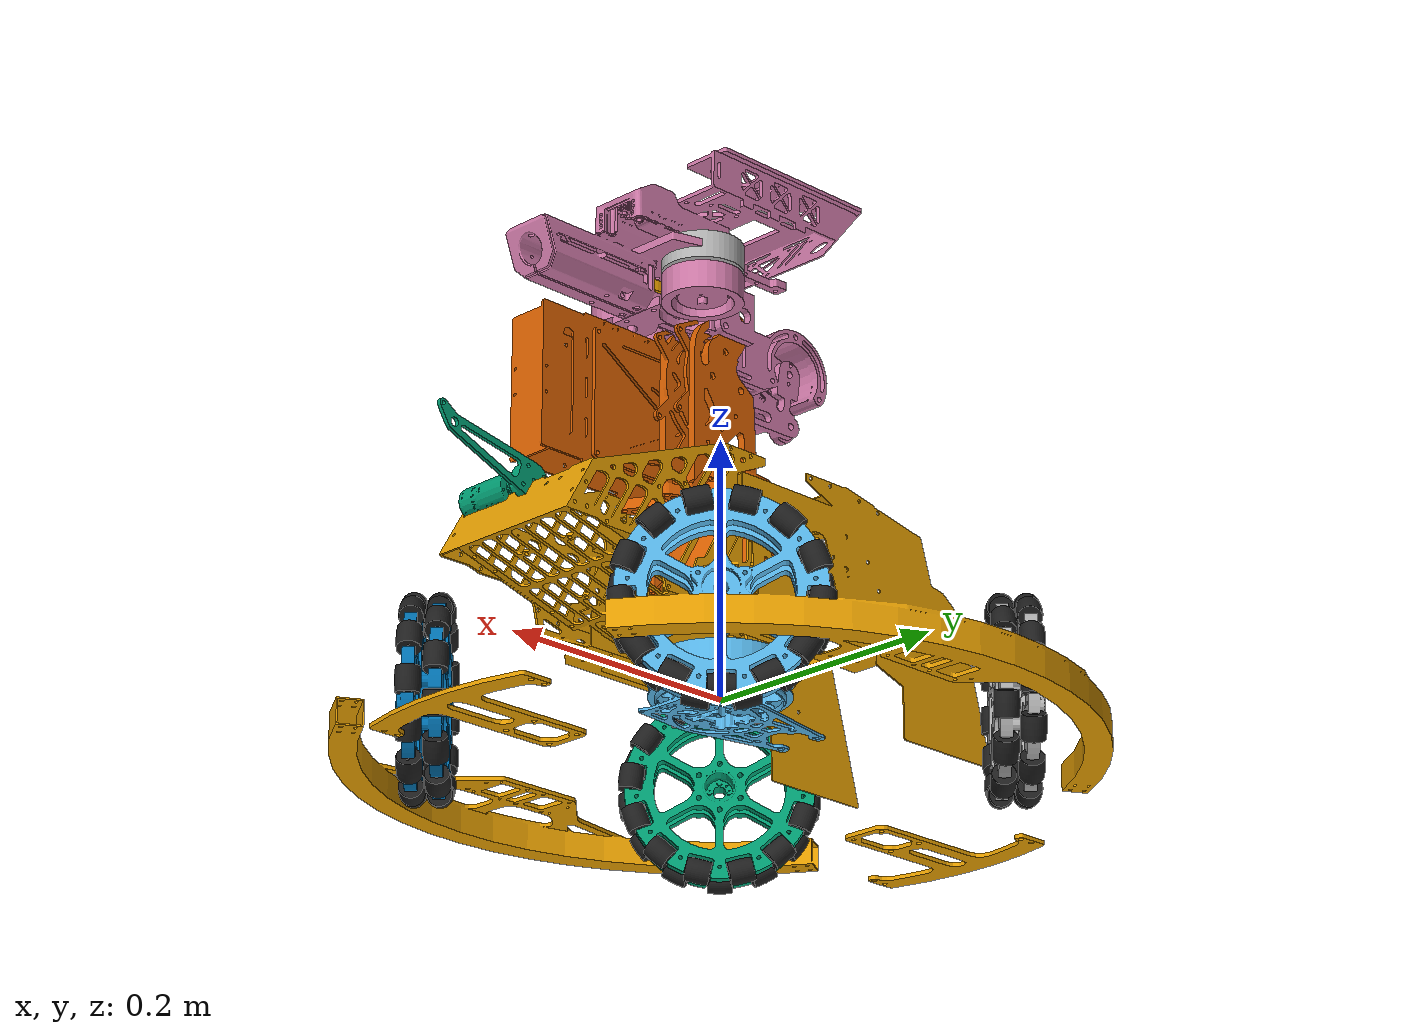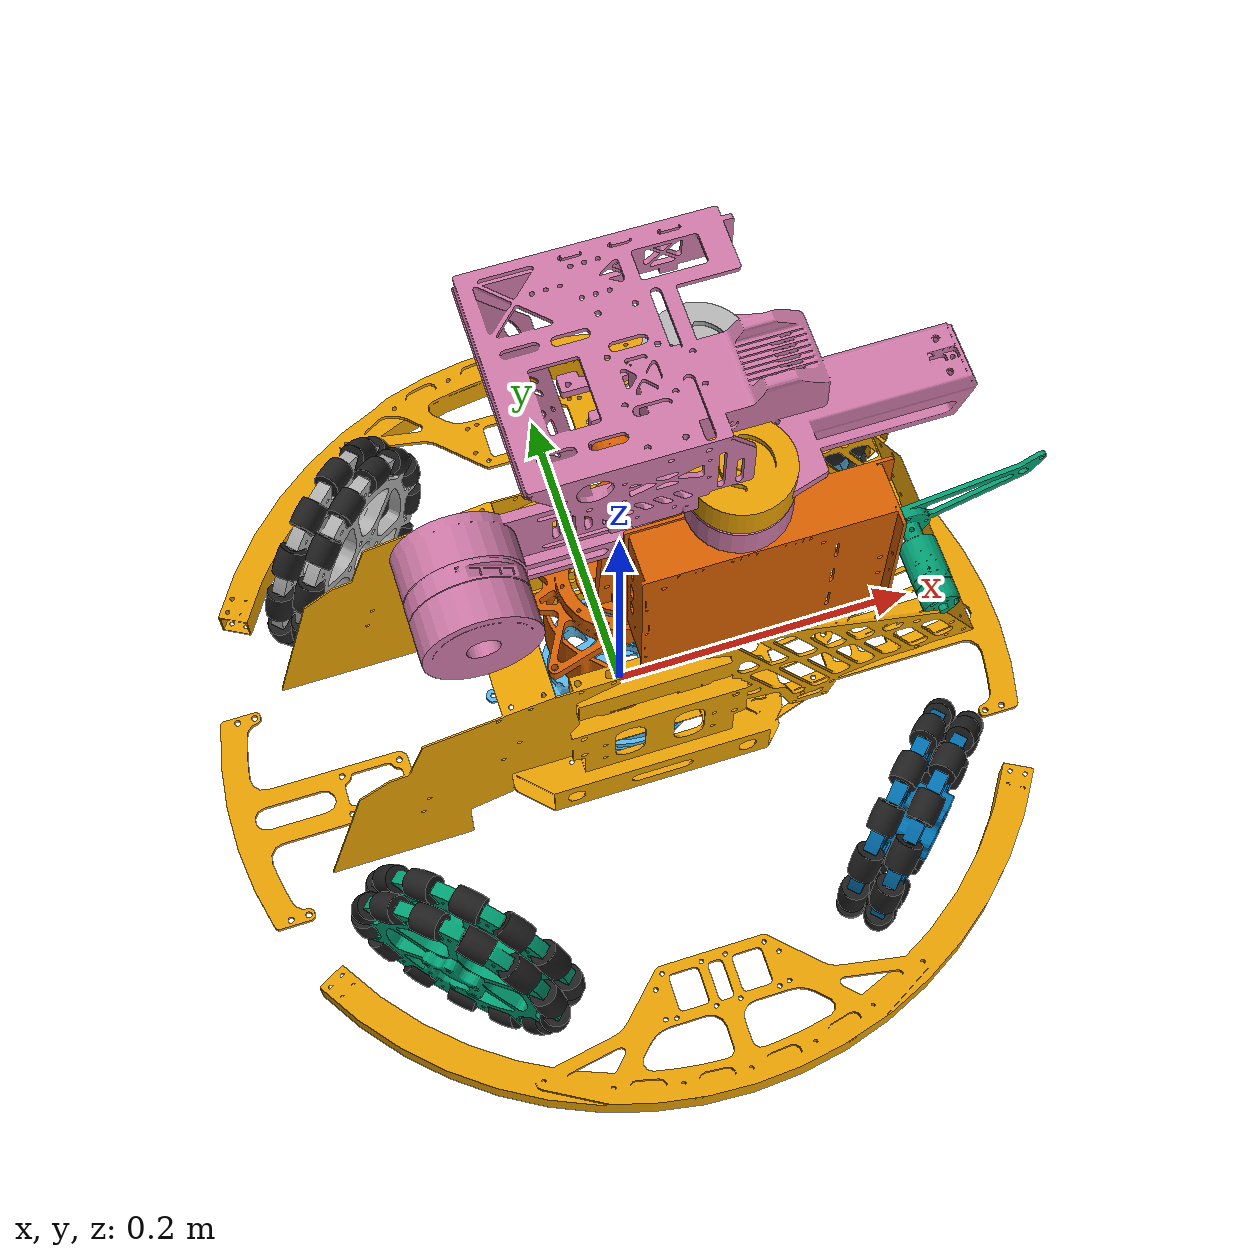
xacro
<?xml version="1.0"?>
<robot xmlns:xacro="http://www.ros.org/wiki/xacro" name="standard3">

    <xacro:arg name="load_chassis" default="true"/>
    <xacro:arg name="load_gimbal" default="true"/>
    <xacro:arg name="load_shooter" default="true"/>
    <xacro:arg name="camera_link" default="camera_link"/>
    <xacro:arg name="camera_optical_frame" default="camera_optical_frame"/>
    <xacro:arg name="use_simulation" default="true"/>

    <xacro:if value="$(arg load_chassis)">
        <xacro:include filename="$(find rm_description)/urdf/standard/chassis.urdf.xacro"/>
        <xacro:chassis/>

        <xacro:if value="$(arg load_gimbal)">
            <xacro:include filename="$(find rm_description)/urdf/standard/gimbal.urdf.xacro"/>
            <xacro:include filename="$(find rm_description)/urdf/standard3/gimbal.transmission.urdf.xacro"/>
            <xacro:include filename="$(find rm_description)/urdf/common/camera.urdf.xacro"/>
            <xacro:include filename="$(find rm_description)/urdf/common/imu.urdf.xacro"/>

            <xacro:if value="$(arg load_shooter)">
                <xacro:include filename="$(find rm_description)/urdf/standard/shooter.urdf.xacro"/>
                <xacro:include filename="$(find rm_description)/urdf/standard3/shooter.transmission.urdf.xacro"/>
            </xacro:if>
        </xacro:if>
    </xacro:if>

    <xacro:if value="$(arg use_simulation)">
        <gazebo>
            <plugin name="rm_ros_control" filename="librm_robot_hw_sim.so">
                <robotNamespace>/</robotNamespace>
                <robotSimType>rm_gazebo/RmRobotHWSim</robotSimType>
            </plugin>
        </gazebo>
    </xacro:if>

</robot>

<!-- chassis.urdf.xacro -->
<robot xmlns:xacro="http://www.ros.org/wiki/xacro">

    <xacro:include filename="$(find rm_description)/urdf/common/omni_wheel.urdf.xacro"/>

    <!-- https://upload.wikimedia.org/wikipedia/commons/5/52/Wheelbase_and_Track.png -->
    <xacro:property name="chassis_radius" value="0.208"/>
    <xacro:property name="wheel_offset_z" value="0.0"/>

    <xacro:macro name="chassis">

        <link name="base_link">
            <inertial>
                <mass value="8.472226"/>
                <origin xyz="0.009872  0.010973  0.001286"/>
                <inertia ixx="1.131e-1" ixy="-4.480e-4" ixz="-9.581e-3" iyy="1.473e-1"
                         iyz="3.352e-3" izz="2.048e-1"/>
            </inertial>
            <visual>
                <origin xyz="0 0 0" rpy="0 0 0"/>
                <geometry>
                    <mesh filename="package://rm_description/meshes/standard/base.stl" scale="0.001 0.001 0.001"/>
                </geometry>
            </visual>
            <collision>
                <origin xyz="0 0 0" rpy="0 0 0"/>
                <geometry>
                    <box size="0.580 0.500 0.050"/>
                </geometry>
            </collision>
        </link>

        <xacro:omni_wheel prefix="left_front" connected_to="base_link"
                          wheel_x_offset="${chassis_radius/sqrt(2)}" wheel_y_offset="${chassis_radius/sqrt(2)}"
                          wheel_z_offset="${wheel_offset_z}" rotation_degree="${3*pi/4}"
        />
        <xacro:omni_wheel prefix="right_front" connected_to="base_link"
                          wheel_x_offset="${chassis_radius/sqrt(2)}" wheel_y_offset="${-chassis_radius/sqrt(2)}"
                          wheel_z_offset="${wheel_offset_z}" rotation_degree="${pi/4}"
        />
        <xacro:omni_wheel prefix="left_back" connected_to="base_link"
                          wheel_x_offset="${-chassis_radius/sqrt(2)}" wheel_y_offset="${chassis_radius/sqrt(2)}"
                          wheel_z_offset="${wheel_offset_z}" rotation_degree="${-3*pi/4}"
        />
        <xacro:omni_wheel prefix="right_back" connected_to="base_link"
                          wheel_x_offset="${-chassis_radius/sqrt(2)}" wheel_y_offset="${-chassis_radius/sqrt(2)}"
                          wheel_z_offset="${wheel_offset_z}" rotation_degree="${-pi/4}"
        />
        <xacro:wheel_transmission prefix="left_front" mechanical_reduction="-19.2032"/>
        <xacro:wheel_transmission prefix="right_front" mechanical_reduction="-19.2032"/>
        <xacro:wheel_transmission prefix="left_back" mechanical_reduction="-19.2032"/>
        <xacro:wheel_transmission prefix="right_back" mechanical_reduction="-19.2032"/>

    </xacro:macro>

</robot>

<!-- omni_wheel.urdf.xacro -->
<robot xmlns:xacro="http://www.ros.org/wiki/xacro" name="omni_wheel">

    <xacro:property name="wheel_radius" value="0.0762"/>
    <xacro:property name="roller_radius" value="0.009"/>
    <xacro:property name="wheel_joint_effort" value="10"/>
    <xacro:property name="wheel_joint_velocity" value="70"/>

    <xacro:macro name="roller" params="prefix suffix theta">
        <xacro:if value="${suffix % 2 == 1}">
            <xacro:property name="joint_y_offset" value="0.009563"/>
        </xacro:if>
        <xacro:if value="${suffix % 2 == 0}">
            <xacro:property name="joint_y_offset" value="-0.009563"/>
        </xacro:if>

        <!--  link  -->
        <link name="${prefix}_roller_${suffix}">
            <visual>
                <origin xyz="0 0 0" rpy="0 0 0"/>
                <geometry>
                    <mesh filename="package://rm_description/meshes/common/omni_roller.stl" scale="0.001 0.001 0.001"/>
                </geometry>
            </visual>
            <collision>
                <geometry>
                    <sphere radius="${roller_radius}"/>
                </geometry>
            </collision>
            <collision>
                    <origin rpy="0 1.57 0" xyz="0 0 0"/>
                    <geometry>
                        <cylinder length="19e-3" radius="8.6e-3"/>
                    </geometry>
            </collision>
            <inertial>
                <mass value="0.0058"/>
                <inertia ixx="270.867e-9" ixy="1.547e-19" ixz="2.133e-19" iyy="291.412e-9" iyz="0.0" izz="291.412e-9"/>
            </inertial>
        </link>

        <joint name="${prefix}_roller_${suffix}_joint" type="continuous">
            <origin
                    xyz="${(wheel_radius-roller_radius)*cos(theta-pi/2)} ${joint_y_offset} ${(wheel_radius-roller_radius)*sin(theta-pi/2)}"
                    rpy="0 ${-theta} 0"/>
            <axis xyz="1 0 0"/>
            <dynamics damping="0.0" friction="0.001"/>
            <parent link="${prefix}_wheel"/>
            <child link="${prefix}_roller_${suffix}"/>
        </joint>

        <gazebo reference="${prefix}_roller_${suffix}">
            <mu1 value="2000.0"/>
            <mu2 value="2000.0"/>
            <kp value="1000000.0"/>
            <kd value="100.0"/>
            <material>Gazebo/Black</material>
        </gazebo>

    </xacro:macro>

    <xacro:macro name="omni_wheel"
                 params="prefix connected_to wheel_x_offset wheel_y_offset wheel_z_offset rotation_degree">
        <!--  link  -->
        <link name="${prefix}_wheel">
            <visual>
                <geometry>
                    <mesh filename="package://rm_description/meshes/common/omni_wheel.stl"
                          scale="0.001 0.001 0.001"/>
                </geometry>
            </visual>
            <inertial>
                <mass value="0.59"/>
                <inertia ixx="1.416e-3" ixy="0.0" ixz="0.0" iyy="2.749e-3" iyz="0.0" izz="1.416e-3"/>
            </inertial>
        </link>

        <!--  joint  -->
        <joint name="${prefix}_wheel_joint" type="revolute">
            <axis xyz="0 1 0"/>
            <origin xyz="${wheel_x_offset} ${wheel_y_offset} ${wheel_offset_z}" rpy="0 0 ${rotation_degree}"/>
            <!--      limit not work while type="continuous"-->
            <limit effort="${wheel_joint_effort}" velocity="${wheel_joint_velocity}" lower="-1e9" upper="1e9"/>
            <dynamics damping="0.0" friction="0.05"/>
            <parent link="${connected_to}"/>
            <child link="${prefix}_wheel"/>
        </joint>

        <xacro:roller prefix="${prefix}" suffix="0" theta="${0*pi/13}"/>
        <xacro:roller prefix="${prefix}" suffix="1" theta="${1*pi/13}"/>
        <xacro:roller prefix="${prefix}" suffix="2" theta="${2*pi/13}"/>
        <xacro:roller prefix="${prefix}" suffix="3" theta="${3*pi/13}"/>
        <xacro:roller prefix="${prefix}" suffix="4" theta="${4*pi/13}"/>
        <xacro:roller prefix="${prefix}" suffix="5" theta="${5*pi/13}"/>
        <xacro:roller prefix="${prefix}" suffix="6" theta="${6*pi/13}"/>
        <xacro:roller prefix="${prefix}" suffix="7" theta="${7*pi/13}"/>
        <xacro:roller prefix="${prefix}" suffix="8" theta="${8*pi/13}"/>
        <xacro:roller prefix="${prefix}" suffix="9" theta="${9*pi/13}"/>
        <xacro:roller prefix="${prefix}" suffix="10" theta="${10*pi/13}"/>
        <xacro:roller prefix="${prefix}" suffix="11" theta="${11*pi/13}"/>
        <xacro:roller prefix="${prefix}" suffix="12" theta="${12*pi/13}"/>
        <xacro:roller prefix="${prefix}" suffix="13" theta="${13*pi/13}"/>
        <xacro:roller prefix="${prefix}" suffix="14" theta="${14*pi/13}"/>
        <xacro:roller prefix="${prefix}" suffix="15" theta="${15*pi/13}"/>
        <xacro:roller prefix="${prefix}" suffix="16" theta="${16*pi/13}"/>
        <xacro:roller prefix="${prefix}" suffix="17" theta="${17*pi/13}"/>
        <xacro:roller prefix="${prefix}" suffix="18" theta="${18*pi/13}"/>
        <xacro:roller prefix="${prefix}" suffix="19" theta="${19*pi/13}"/>
        <xacro:roller prefix="${prefix}" suffix="20" theta="${20*pi/13}"/>
        <xacro:roller prefix="${prefix}" suffix="21" theta="${21*pi/13}"/>
        <xacro:roller prefix="${prefix}" suffix="22" theta="${22*pi/13}"/>
        <xacro:roller prefix="${prefix}" suffix="23" theta="${23*pi/13}"/>
        <xacro:roller prefix="${prefix}" suffix="24" theta="${24*pi/13}"/>
        <xacro:roller prefix="${prefix}" suffix="25" theta="${25*pi/13}"/>

    </xacro:macro>

    <xacro:macro name="wheel_transmission" params="prefix mechanical_reduction">
        <transmission name="${prefix}_wheel_trans">
            <type>transmission_interface/SimpleTransmission</type>
            <actuator name="${prefix}_wheel_motor">
                <hardwareInterface>hardware_interface/EffortJointInterface</hardwareInterface>
                <mechanicalReduction>${mechanical_reduction}</mechanicalReduction>
            </actuator>
            <joint name="${prefix}_wheel_joint">
                <hardwareInterface>hardware_interface/EffortJointInterface</hardwareInterface>
            </joint>
        </transmission>
    </xacro:macro>

</robot>

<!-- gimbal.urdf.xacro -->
<robot xmlns:xacro="http://www.ros.org/wiki/xacro">

    <xacro:property name="threshold" value="0.1"/>
    <xacro:property name="pitch_lower_limit" value="-0.583"/>
    <xacro:property name="pitch_upper_limit" value="0.562"/>

    <link name="yaw">
        <inertial>
            <mass value="2.497"/>
            <origin xyz="0.014616 -0.007729 -0.004103"/>
            <inertia ixx="1.039e-2" ixy="1.575e-3" ixz="-2.149e-3" iyy="1.181e-2"
                     iyz="1.267e-3" izz="6.380e-3"/>
        </inertial>
        <visual>
            <origin xyz="0 0 0" rpy="0 0 0"/>
            <geometry>
                <mesh filename="package://rm_description/meshes/standard/yaw.stl" scale="0.001 0.001 0.001"/>
            </geometry>
        </visual>
        <collision>
            <origin xyz="0 0 0" rpy="0 0 0"/>
            <geometry>
                <mesh filename="package://rm_description/meshes/standard/yaw.stl" scale="0.001 0.001 0.001"/>
            </geometry>
        </collision>
        </link>

        <joint name="yaw_joint" type="revolute">
            <origin xyz="0 0 0.162"
                    rpy="0 0 0"/>
            <dynamics damping="0.0" friction="0.1"/>
            <limit effort="1.2" velocity="31" lower="-1e10" upper="1e10"/>
            <parent link="base_link"/>
            <child link="yaw"/>
            <axis xyz="0 0 1"/>
        </joint>

        <link name="pitch">
            <inertial>
                <mass value="2.244065"/>
                <origin xyz="0.00115 -0.0128 0.0253"/>
                <inertia ixx="9.63e-3" ixy="-4.829e-3" ixz="-1.382e-3" iyy="1.723e-2"
                         iyz="-1.088e-3" izz="1.867e-2"/>
            </inertial>
            <visual>
                <origin xyz="0 0 0" rpy="0 0 0"/>
                <geometry>
                    <mesh filename="package://rm_description/meshes/standard/pitch.stl" scale="0.001 0.001 0.001"/>
                </geometry>
            </visual>
            <collision>
                <origin xyz="0 0 0" rpy="0 0 0"/>
                <geometry>
                    <mesh filename="package://rm_description/meshes/standard/pitch.stl" scale="0.001 0.001 0.001"/>
                </geometry>
            </collision>
        </link>

        <joint name="pitch_joint" type="revolute">
            <origin xyz="0 0 0.129897" rpy="0 0 0"/>
            <dynamics damping="0.0" friction="0.1"/>
            <limit effort="1.2" velocity="13.82" lower="${pitch_lower_limit}" upper="${pitch_upper_limit}"/>
            <safety_controller k_position="100" k_velocity="0.1"
                               soft_lower_limit="${pitch_lower_limit+threshold}"
                               soft_upper_limit="${pitch_upper_limit-threshold}"/>
            <parent link="yaw"/>
            <child link="pitch"/>
            <axis xyz="0 1 0 "/>
        </joint>

</robot>

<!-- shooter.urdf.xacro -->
<robot xmlns:xacro="http://www.ros.org/wiki/xacro">

    <xacro:include filename="$(find rm_description)/urdf/common/friction.urdf.xacro"/>

    <xacro:property name="wheel_offset_x" value="0.055"/>
    <xacro:property name="wheel_offset_y" value="0.0365"/>
    <xacro:property name="wheel_offset_z" value="0.022375"/>

    <xacro:friction_wheel prefixs="left" connected_to="pitch"
                          wheel_x_offset="${wheel_offset_x}" wheel_y_offset="${wheel_offset_y}"
                          wheel_z_offset="${wheel_offset_z}"/>

    <xacro:friction_wheel prefixs="right" connected_to="pitch"
                          wheel_x_offset="${wheel_offset_x}" wheel_y_offset="${-wheel_offset_y}"
                          wheel_z_offset="${wheel_offset_z}"/>

    <link name="trigger">
        <inertial>
            <mass value="0.952"/>
            <origin xyz="-0.012227 -0.000055 0.010137"/>
            <inertia ixx="8.90e-4" ixy="2.012e-6" ixz="1.911e-4" iyy="1.768e-3"
                     iyz="-7.72e-7" izz="2.067e-3"/>
        </inertial>
        <visual>
            <origin xyz="0 0 0" rpy="0 0 0"/>
            <geometry>
                <mesh filename="package://rm_description/meshes/standard/trigger.stl" scale="0.001 0.001 0.001"/>
            </geometry>
        </visual>
        <collision>
            <origin xyz="0 0 0" rpy="0 0 0"/>
            <geometry>
                <mesh filename="package://rm_description/meshes/standard/trigger.stl" scale="0.001 0.001 0.001"/>
            </geometry>
        </collision>
    </link>

    <joint name="trigger_joint" type="revolute">
        <origin xyz="0 0 -0.011" rpy="0 0 0"/>
        <dynamics damping="0.0" friction="0.01"/>
        <limit effort="3.0" velocity="43.54" lower="-1e16" upper="1e16"/>
        <parent link="base_link"/>
        <child link="trigger"/>
        <axis xyz="0 0 1 "/>

    </joint>

    <link name="cover">
        <inertial>
            <mass value="0.0246"/>
            <origin xyz="-0.064 -0.000225 0.02447"/>
            <inertia ixx="5.40e-5" ixy="-1.30e-7" ixz="5.13e-5" iyy="1.54e-4" iyz="4.7e-8" izz="1.688e-4"/>
        </inertial>
        <visual>
            <origin xyz="0 0 0" rpy="0 0 0"/>
            <geometry>
                <mesh filename="package://rm_description/meshes/standard/cover.stl" scale="0.001 0.001 0.001"/>
            </geometry>
        </visual>
        <collision>
            <origin xyz="0.033 0.0 -0.0" rpy="0 0.0 0"/>
            <geometry>
                <mesh filename="package://rm_description/meshes/standard/cover.stl" scale="0.001 0.001 0.001"/>
            </geometry>
        </collision>
    </link>

    <joint name="cover_joint" type="revolute">
        <axis xyz="0 1 0"/>
        <origin xyz="0.187014 0 0.113269"/>
        <limit effort="1.0" velocity="30" lower="0" upper="3.14"/>
        <dynamics damping="0.0" friction="0.1"/>
        <parent link="base_link"/>
        <child link="cover"/>
    </joint>

</robot>

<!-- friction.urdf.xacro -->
<robot xmlns:xacro="http://www.ros.org/wiki/xacro">

    <xacro:macro name="friction_wheel" params="prefixs:='' connected_to:=''  wheel_x_offset:='0' wheel_y_offset:='0' wheel_z_offset:='0' ">

        <link name="${prefixs}_friction_wheel">
            <inertial>
                <mass value="0.15269"/>
                <origin xyz="0 0 -0.004"/>
                <inertia ixx="4.776e-5" ixy="2.192e-7" ixz="-1.28e-7" iyy="4.759e-5"
                         iyz="-1.683e-7" izz="6.148e-5"/>
            </inertial>
            <visual>
                <origin xyz="0 0 0" rpy="0 0 0"/>
                <geometry>
                    <mesh filename="package://rm_description/meshes/common/friction.stl" scale="0.001 0.001 0.001" />
                </geometry>
            </visual>
            <collision>
                <origin xyz="0 0 0" rpy="0 0 0"/>
                <geometry>
                    <mesh filename="package://rm_description/meshes/common/friction.stl"  scale="0.001 0.001 0.001" />
                </geometry>
            </collision>
        </link>

        <joint name="${prefixs}_friction_wheel_joint"  type="continuous">
            <origin xyz="${wheel_x_offset} ${wheel_y_offset} ${wheel_offset_z}" rpy="0 0 0"/>"
            <dynamics damping="0.0" friction="0.01"/>
            <limit upper="1e16" lower="-1e16" effort="0.156" velocity="942.66"/>
            <parent link="${connected_to}" />
            <child link="${prefixs}_friction_wheel" />
            <axis xyz="0 0 1" />

        </joint>

    </xacro:macro>
</robot>
